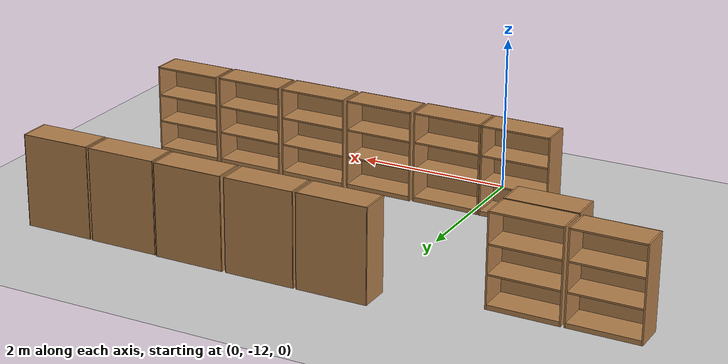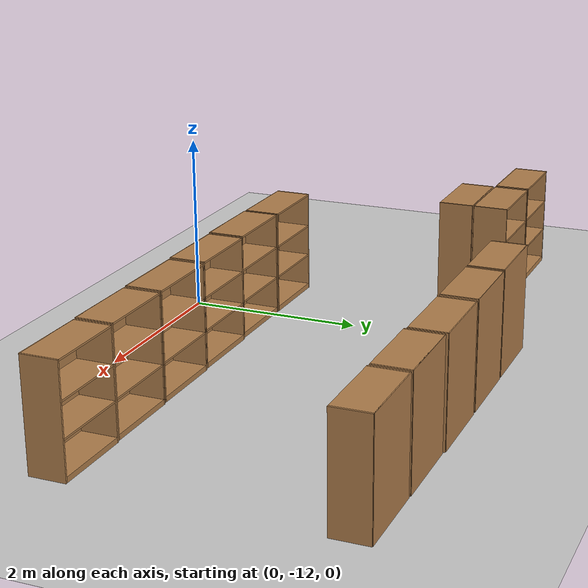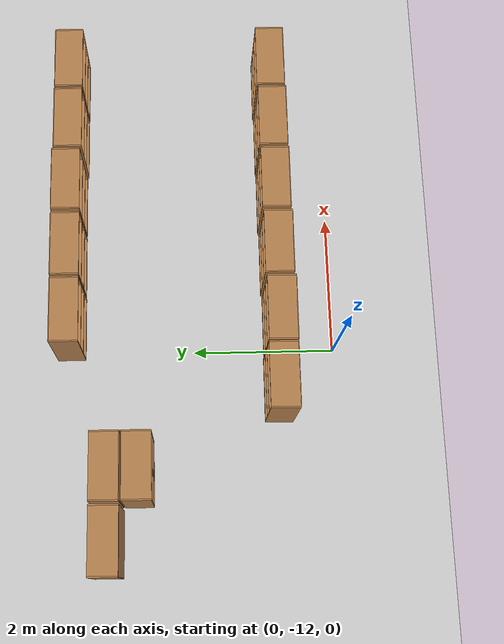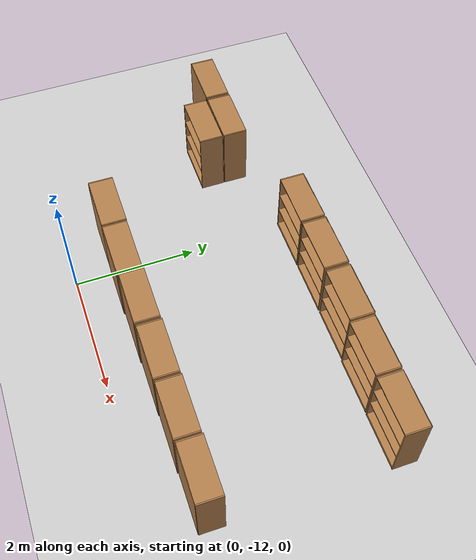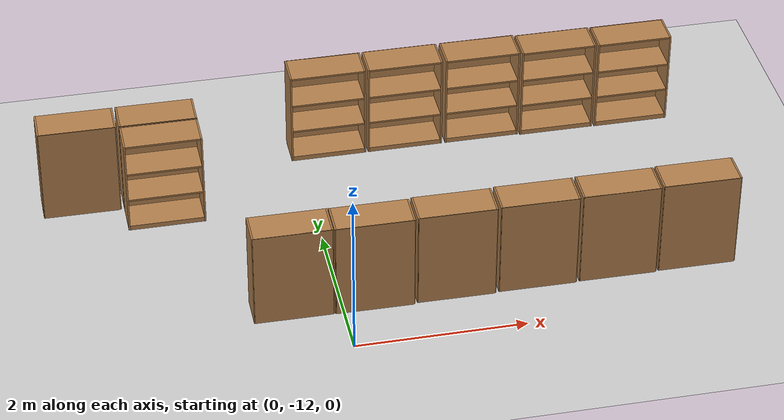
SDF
<sdf version="1.6">
 <world name="default">
  <model name="ground_plane">
   <static>1</static>
   <link name="link">
    <collision name="collision">
     <geometry><plane><normal>0 0 1</normal><size>100 100</size></plane></geometry>
     <surface>
      <contact><collide_bitmask>65535</collide_bitmask></contact>
      <friction><ode><mu>100</mu><mu2>50</mu2></ode></friction>
     </surface>
    </collision>
    <visual name="visual">
     <cast_shadows>0</cast_shadows>
     <geometry><plane><normal>0 0 1</normal><size>100 100</size></plane></geometry>
     <material>
      <script><uri>file://media/materials/scripts/gazebo.material</uri><name>Gazebo/Grey</name></script>
     </material>
    </visual>
   </link>
  </model>
  <model name="bookshelf_clone_56">
   <static>1</static>
   <link name="link">
    <inertial><mass>1</mass></inertial>
    <collision name="back">
     <pose>0 0.005 0.6 0 -0 0</pose>
     <geometry><box><size>0.9 0.01 1.2</size></box></geometry>
    </collision>
    <visual name="visual1">
     <pose>0 0.005 0.6 0 -0 0</pose>
     <geometry><box><size>0.9 0.01 1.2</size></box></geometry>
     <material>
      <script><uri>file://media/materials/scripts/gazebo.material</uri><name>Gazebo/Wood</name></script>
     </material>
    </visual>
    <collision name="left_side">
     <pose>0.45 -0.195 0.6 0 -0 0</pose>
     <geometry><box><size>0.02 0.4 1.2</size></box></geometry>
    </collision>
    <visual name="visual2">
     <pose>0.45 -0.195 0.6 0 -0 0</pose>
     <geometry><box><size>0.02 0.4 1.2</size></box></geometry>
     <material>
      <script><uri>file://media/materials/scripts/gazebo.material</uri><name>Gazebo/Wood</name></script>
     </material>
    </visual>
    <collision name="right_side">
     <pose>-0.45 -0.195 0.6 0 -0 0</pose>
     <geometry><box><size>0.02 0.4 1.2</size></box></geometry>
    </collision>
    <visual name="visual3">
     <pose>-0.45 -0.195 0.6 0 -0 0</pose>
     <geometry><box><size>0.02 0.4 1.2</size></box></geometry>
     <material>
      <script><uri>file://media/materials/scripts/gazebo.material</uri><name>Gazebo/Wood</name></script>
     </material>
    </visual>
    <collision name="bottom">
     <pose>0 -0.195 0.03 0 -0 0</pose>
     <geometry><box><size>0.88 0.4 0.06</size></box></geometry>
    </collision>
    <visual name="visual4">
     <pose>0 -0.195 0.03 0 -0 0</pose>
     <geometry><box><size>0.88 0.4 0.06</size></box></geometry>
     <material>
      <script><uri>file://media/materials/scripts/gazebo.material</uri><name>Gazebo/Wood</name></script>
     </material>
    </visual>
    <collision name="top">
     <pose>0 -0.195 1.19 0 -0 0</pose>
     <geometry><box><size>0.88 0.4 0.02</size></box></geometry>
    </collision>
    <visual name="visual5">
     <pose>0 -0.195 1.19 0 -0 0</pose>
     <geometry><box><size>0.88 0.4 0.02</size></box></geometry>
     <material>
      <script><uri>file://media/materials/scripts/gazebo.material</uri><name>Gazebo/Wood</name></script>
     </material>
    </visual>
    <collision name="low_shelf">
     <pose>0 -0.195 0.43 0 -0 0</pose>
     <geometry><box><size>0.88 0.4 0.02</size></box></geometry>
    </collision>
    <visual name="visual6">
     <pose>0 -0.195 0.43 0 -0 0</pose>
     <geometry><box><size>0.88 0.4 0.02</size></box></geometry>
     <material>
      <script><uri>file://media/materials/scripts/gazebo.material</uri><name>Gazebo/Wood</name></script>
     </material>
    </visual>
    <collision name="high_shelf">
     <pose>0 -0.195 0.8 0 -0 0</pose>
     <geometry><box><size>0.88 0.4 0.02</size></box></geometry>
    </collision>
    <visual name="visual7">
     <pose>0 -0.195 0.8 0 -0 0</pose>
     <geometry><box><size>0.88 0.4 0.02</size></box></geometry>
     <material>
      <script><uri>file://media/materials/scripts/gazebo.material</uri><name>Gazebo/Wood</name></script>
     </material>
    </visual>
   </link>
   <pose>-0.569408 -11.3883 0 0 -0 3.13561</pose>
  </model>
  <model name="bookshelf_clone_57">
   <static>1</static>
   <link name="link">
    <inertial><mass>1</mass></inertial>
    <collision name="back">
     <pose>0 0.005 0.6 0 -0 0</pose>
     <geometry><box><size>0.9 0.01 1.2</size></box></geometry>
    </collision>
    <visual name="visual1">
     <pose>0 0.005 0.6 0 -0 0</pose>
     <geometry><box><size>0.9 0.01 1.2</size></box></geometry>
     <material>
      <script><uri>file://media/materials/scripts/gazebo.material</uri><name>Gazebo/Wood</name></script>
     </material>
    </visual>
    <collision name="left_side">
     <pose>0.45 -0.195 0.6 0 -0 0</pose>
     <geometry><box><size>0.02 0.4 1.2</size></box></geometry>
    </collision>
    <visual name="visual2">
     <pose>0.45 -0.195 0.6 0 -0 0</pose>
     <geometry><box><size>0.02 0.4 1.2</size></box></geometry>
     <material>
      <script><uri>file://media/materials/scripts/gazebo.material</uri><name>Gazebo/Wood</name></script>
     </material>
    </visual>
    <collision name="right_side">
     <pose>-0.45 -0.195 0.6 0 -0 0</pose>
     <geometry><box><size>0.02 0.4 1.2</size></box></geometry>
    </collision>
    <visual name="visual3">
     <pose>-0.45 -0.195 0.6 0 -0 0</pose>
     <geometry><box><size>0.02 0.4 1.2</size></box></geometry>
     <material>
      <script><uri>file://media/materials/scripts/gazebo.material</uri><name>Gazebo/Wood</name></script>
     </material>
    </visual>
    <collision name="bottom">
     <pose>0 -0.195 0.03 0 -0 0</pose>
     <geometry><box><size>0.88 0.4 0.06</size></box></geometry>
    </collision>
    <visual name="visual4">
     <pose>0 -0.195 0.03 0 -0 0</pose>
     <geometry><box><size>0.88 0.4 0.06</size></box></geometry>
     <material>
      <script><uri>file://media/materials/scripts/gazebo.material</uri><name>Gazebo/Wood</name></script>
     </material>
    </visual>
    <collision name="top">
     <pose>0 -0.195 1.19 0 -0 0</pose>
     <geometry><box><size>0.88 0.4 0.02</size></box></geometry>
    </collision>
    <visual name="visual5">
     <pose>0 -0.195 1.19 0 -0 0</pose>
     <geometry><box><size>0.88 0.4 0.02</size></box></geometry>
     <material>
      <script><uri>file://media/materials/scripts/gazebo.material</uri><name>Gazebo/Wood</name></script>
     </material>
    </visual>
    <collision name="low_shelf">
     <pose>0 -0.195 0.43 0 -0 0</pose>
     <geometry><box><size>0.88 0.4 0.02</size></box></geometry>
    </collision>
    <visual name="visual6">
     <pose>0 -0.195 0.43 0 -0 0</pose>
     <geometry><box><size>0.88 0.4 0.02</size></box></geometry>
     <material>
      <script><uri>file://media/materials/scripts/gazebo.material</uri><name>Gazebo/Wood</name></script>
     </material>
    </visual>
    <collision name="high_shelf">
     <pose>0 -0.195 0.8 0 -0 0</pose>
     <geometry><box><size>0.88 0.4 0.02</size></box></geometry>
    </collision>
    <visual name="visual7">
     <pose>0 -0.195 0.8 0 -0 0</pose>
     <geometry><box><size>0.88 0.4 0.02</size></box></geometry>
     <material>
      <script><uri>file://media/materials/scripts/gazebo.material</uri><name>Gazebo/Wood</name></script>
     </material>
    </visual>
   </link>
   <pose>0.361588 -11.3985 0 0 -0 3.13561</pose>
  </model>
  <model name="bookshelf_clone_58">
   <static>1</static>
   <link name="link">
    <inertial><mass>1</mass></inertial>
    <collision name="back">
     <pose>0 0.005 0.6 0 -0 0</pose>
     <geometry><box><size>0.9 0.01 1.2</size></box></geometry>
    </collision>
    <visual name="visual1">
     <pose>0 0.005 0.6 0 -0 0</pose>
     <geometry><box><size>0.9 0.01 1.2</size></box></geometry>
     <material>
      <script><uri>file://media/materials/scripts/gazebo.material</uri><name>Gazebo/Wood</name></script>
     </material>
    </visual>
    <collision name="left_side">
     <pose>0.45 -0.195 0.6 0 -0 0</pose>
     <geometry><box><size>0.02 0.4 1.2</size></box></geometry>
    </collision>
    <visual name="visual2">
     <pose>0.45 -0.195 0.6 0 -0 0</pose>
     <geometry><box><size>0.02 0.4 1.2</size></box></geometry>
     <material>
      <script><uri>file://media/materials/scripts/gazebo.material</uri><name>Gazebo/Wood</name></script>
     </material>
    </visual>
    <collision name="right_side">
     <pose>-0.45 -0.195 0.6 0 -0 0</pose>
     <geometry><box><size>0.02 0.4 1.2</size></box></geometry>
    </collision>
    <visual name="visual3">
     <pose>-0.45 -0.195 0.6 0 -0 0</pose>
     <geometry><box><size>0.02 0.4 1.2</size></box></geometry>
     <material>
      <script><uri>file://media/materials/scripts/gazebo.material</uri><name>Gazebo/Wood</name></script>
     </material>
    </visual>
    <collision name="bottom">
     <pose>0 -0.195 0.03 0 -0 0</pose>
     <geometry><box><size>0.88 0.4 0.06</size></box></geometry>
    </collision>
    <visual name="visual4">
     <pose>0 -0.195 0.03 0 -0 0</pose>
     <geometry><box><size>0.88 0.4 0.06</size></box></geometry>
     <material>
      <script><uri>file://media/materials/scripts/gazebo.material</uri><name>Gazebo/Wood</name></script>
     </material>
    </visual>
    <collision name="top">
     <pose>0 -0.195 1.19 0 -0 0</pose>
     <geometry><box><size>0.88 0.4 0.02</size></box></geometry>
    </collision>
    <visual name="visual5">
     <pose>0 -0.195 1.19 0 -0 0</pose>
     <geometry><box><size>0.88 0.4 0.02</size></box></geometry>
     <material>
      <script><uri>file://media/materials/scripts/gazebo.material</uri><name>Gazebo/Wood</name></script>
     </material>
    </visual>
    <collision name="low_shelf">
     <pose>0 -0.195 0.43 0 -0 0</pose>
     <geometry><box><size>0.88 0.4 0.02</size></box></geometry>
    </collision>
    <visual name="visual6">
     <pose>0 -0.195 0.43 0 -0 0</pose>
     <geometry><box><size>0.88 0.4 0.02</size></box></geometry>
     <material>
      <script><uri>file://media/materials/scripts/gazebo.material</uri><name>Gazebo/Wood</name></script>
     </material>
    </visual>
    <collision name="high_shelf">
     <pose>0 -0.195 0.8 0 -0 0</pose>
     <geometry><box><size>0.88 0.4 0.02</size></box></geometry>
    </collision>
    <visual name="visual7">
     <pose>0 -0.195 0.8 0 -0 0</pose>
     <geometry><box><size>0.88 0.4 0.02</size></box></geometry>
     <material>
      <script><uri>file://media/materials/scripts/gazebo.material</uri><name>Gazebo/Wood</name></script>
     </material>
    </visual>
   </link>
   <pose>1.30898 -11.3858 0 0 -0 3.13561</pose>
  </model>
  <model name="bookshelf_clone_59">
   <static>1</static>
   <link name="link">
    <inertial><mass>1</mass></inertial>
    <collision name="back">
     <pose>0 0.005 0.6 0 -0 0</pose>
     <geometry><box><size>0.9 0.01 1.2</size></box></geometry>
    </collision>
    <visual name="visual1">
     <pose>0 0.005 0.6 0 -0 0</pose>
     <geometry><box><size>0.9 0.01 1.2</size></box></geometry>
     <material>
      <script><uri>file://media/materials/scripts/gazebo.material</uri><name>Gazebo/Wood</name></script>
     </material>
    </visual>
    <collision name="left_side">
     <pose>0.45 -0.195 0.6 0 -0 0</pose>
     <geometry><box><size>0.02 0.4 1.2</size></box></geometry>
    </collision>
    <visual name="visual2">
     <pose>0.45 -0.195 0.6 0 -0 0</pose>
     <geometry><box><size>0.02 0.4 1.2</size></box></geometry>
     <material>
      <script><uri>file://media/materials/scripts/gazebo.material</uri><name>Gazebo/Wood</name></script>
     </material>
    </visual>
    <collision name="right_side">
     <pose>-0.45 -0.195 0.6 0 -0 0</pose>
     <geometry><box><size>0.02 0.4 1.2</size></box></geometry>
    </collision>
    <visual name="visual3">
     <pose>-0.45 -0.195 0.6 0 -0 0</pose>
     <geometry><box><size>0.02 0.4 1.2</size></box></geometry>
     <material>
      <script><uri>file://media/materials/scripts/gazebo.material</uri><name>Gazebo/Wood</name></script>
     </material>
    </visual>
    <collision name="bottom">
     <pose>0 -0.195 0.03 0 -0 0</pose>
     <geometry><box><size>0.88 0.4 0.06</size></box></geometry>
    </collision>
    <visual name="visual4">
     <pose>0 -0.195 0.03 0 -0 0</pose>
     <geometry><box><size>0.88 0.4 0.06</size></box></geometry>
     <material>
      <script><uri>file://media/materials/scripts/gazebo.material</uri><name>Gazebo/Wood</name></script>
     </material>
    </visual>
    <collision name="top">
     <pose>0 -0.195 1.19 0 -0 0</pose>
     <geometry><box><size>0.88 0.4 0.02</size></box></geometry>
    </collision>
    <visual name="visual5">
     <pose>0 -0.195 1.19 0 -0 0</pose>
     <geometry><box><size>0.88 0.4 0.02</size></box></geometry>
     <material>
      <script><uri>file://media/materials/scripts/gazebo.material</uri><name>Gazebo/Wood</name></script>
     </material>
    </visual>
    <collision name="low_shelf">
     <pose>0 -0.195 0.43 0 -0 0</pose>
     <geometry><box><size>0.88 0.4 0.02</size></box></geometry>
    </collision>
    <visual name="visual6">
     <pose>0 -0.195 0.43 0 -0 0</pose>
     <geometry><box><size>0.88 0.4 0.02</size></box></geometry>
     <material>
      <script><uri>file://media/materials/scripts/gazebo.material</uri><name>Gazebo/Wood</name></script>
     </material>
    </visual>
    <collision name="high_shelf">
     <pose>0 -0.195 0.8 0 -0 0</pose>
     <geometry><box><size>0.88 0.4 0.02</size></box></geometry>
    </collision>
    <visual name="visual7">
     <pose>0 -0.195 0.8 0 -0 0</pose>
     <geometry><box><size>0.88 0.4 0.02</size></box></geometry>
     <material>
      <script><uri>file://media/materials/scripts/gazebo.material</uri><name>Gazebo/Wood</name></script>
     </material>
    </visual>
   </link>
   <pose>2.26189 -11.3761 0 0 -0 3.13561</pose>
  </model>
  <model name="bookshelf_clone_60">
   <static>1</static>
   <link name="link">
    <inertial><mass>1</mass></inertial>
    <collision name="back">
     <pose>0 0.005 0.6 0 -0 0</pose>
     <geometry><box><size>0.9 0.01 1.2</size></box></geometry>
    </collision>
    <visual name="visual1">
     <pose>0 0.005 0.6 0 -0 0</pose>
     <geometry><box><size>0.9 0.01 1.2</size></box></geometry>
     <material>
      <script><uri>file://media/materials/scripts/gazebo.material</uri><name>Gazebo/Wood</name></script>
     </material>
    </visual>
    <collision name="left_side">
     <pose>0.45 -0.195 0.6 0 -0 0</pose>
     <geometry><box><size>0.02 0.4 1.2</size></box></geometry>
    </collision>
    <visual name="visual2">
     <pose>0.45 -0.195 0.6 0 -0 0</pose>
     <geometry><box><size>0.02 0.4 1.2</size></box></geometry>
     <material>
      <script><uri>file://media/materials/scripts/gazebo.material</uri><name>Gazebo/Wood</name></script>
     </material>
    </visual>
    <collision name="right_side">
     <pose>-0.45 -0.195 0.6 0 -0 0</pose>
     <geometry><box><size>0.02 0.4 1.2</size></box></geometry>
    </collision>
    <visual name="visual3">
     <pose>-0.45 -0.195 0.6 0 -0 0</pose>
     <geometry><box><size>0.02 0.4 1.2</size></box></geometry>
     <material>
      <script><uri>file://media/materials/scripts/gazebo.material</uri><name>Gazebo/Wood</name></script>
     </material>
    </visual>
    <collision name="bottom">
     <pose>0 -0.195 0.03 0 -0 0</pose>
     <geometry><box><size>0.88 0.4 0.06</size></box></geometry>
    </collision>
    <visual name="visual4">
     <pose>0 -0.195 0.03 0 -0 0</pose>
     <geometry><box><size>0.88 0.4 0.06</size></box></geometry>
     <material>
      <script><uri>file://media/materials/scripts/gazebo.material</uri><name>Gazebo/Wood</name></script>
     </material>
    </visual>
    <collision name="top">
     <pose>0 -0.195 1.19 0 -0 0</pose>
     <geometry><box><size>0.88 0.4 0.02</size></box></geometry>
    </collision>
    <visual name="visual5">
     <pose>0 -0.195 1.19 0 -0 0</pose>
     <geometry><box><size>0.88 0.4 0.02</size></box></geometry>
     <material>
      <script><uri>file://media/materials/scripts/gazebo.material</uri><name>Gazebo/Wood</name></script>
     </material>
    </visual>
    <collision name="low_shelf">
     <pose>0 -0.195 0.43 0 -0 0</pose>
     <geometry><box><size>0.88 0.4 0.02</size></box></geometry>
    </collision>
    <visual name="visual6">
     <pose>0 -0.195 0.43 0 -0 0</pose>
     <geometry><box><size>0.88 0.4 0.02</size></box></geometry>
     <material>
      <script><uri>file://media/materials/scripts/gazebo.material</uri><name>Gazebo/Wood</name></script>
     </material>
    </visual>
    <collision name="high_shelf">
     <pose>0 -0.195 0.8 0 -0 0</pose>
     <geometry><box><size>0.88 0.4 0.02</size></box></geometry>
    </collision>
    <visual name="visual7">
     <pose>0 -0.195 0.8 0 -0 0</pose>
     <geometry><box><size>0.88 0.4 0.02</size></box></geometry>
     <material>
      <script><uri>file://media/materials/scripts/gazebo.material</uri><name>Gazebo/Wood</name></script>
     </material>
    </visual>
   </link>
   <pose>3.21199 -11.3706 0 0 -0 3.13561</pose>
  </model>
  <model name="bookshelf_clone_61">
   <static>1</static>
   <link name="link">
    <inertial><mass>1</mass></inertial>
    <collision name="back">
     <pose>0 0.005 0.6 0 -0 0</pose>
     <geometry><box><size>0.9 0.01 1.2</size></box></geometry>
    </collision>
    <visual name="visual1">
     <pose>0 0.005 0.6 0 -0 0</pose>
     <geometry><box><size>0.9 0.01 1.2</size></box></geometry>
     <material>
      <script><uri>file://media/materials/scripts/gazebo.material</uri><name>Gazebo/Wood</name></script>
     </material>
    </visual>
    <collision name="left_side">
     <pose>0.45 -0.195 0.6 0 -0 0</pose>
     <geometry><box><size>0.02 0.4 1.2</size></box></geometry>
    </collision>
    <visual name="visual2">
     <pose>0.45 -0.195 0.6 0 -0 0</pose>
     <geometry><box><size>0.02 0.4 1.2</size></box></geometry>
     <material>
      <script><uri>file://media/materials/scripts/gazebo.material</uri><name>Gazebo/Wood</name></script>
     </material>
    </visual>
    <collision name="right_side">
     <pose>-0.45 -0.195 0.6 0 -0 0</pose>
     <geometry><box><size>0.02 0.4 1.2</size></box></geometry>
    </collision>
    <visual name="visual3">
     <pose>-0.45 -0.195 0.6 0 -0 0</pose>
     <geometry><box><size>0.02 0.4 1.2</size></box></geometry>
     <material>
      <script><uri>file://media/materials/scripts/gazebo.material</uri><name>Gazebo/Wood</name></script>
     </material>
    </visual>
    <collision name="bottom">
     <pose>0 -0.195 0.03 0 -0 0</pose>
     <geometry><box><size>0.88 0.4 0.06</size></box></geometry>
    </collision>
    <visual name="visual4">
     <pose>0 -0.195 0.03 0 -0 0</pose>
     <geometry><box><size>0.88 0.4 0.06</size></box></geometry>
     <material>
      <script><uri>file://media/materials/scripts/gazebo.material</uri><name>Gazebo/Wood</name></script>
     </material>
    </visual>
    <collision name="top">
     <pose>0 -0.195 1.19 0 -0 0</pose>
     <geometry><box><size>0.88 0.4 0.02</size></box></geometry>
    </collision>
    <visual name="visual5">
     <pose>0 -0.195 1.19 0 -0 0</pose>
     <geometry><box><size>0.88 0.4 0.02</size></box></geometry>
     <material>
      <script><uri>file://media/materials/scripts/gazebo.material</uri><name>Gazebo/Wood</name></script>
     </material>
    </visual>
    <collision name="low_shelf">
     <pose>0 -0.195 0.43 0 -0 0</pose>
     <geometry><box><size>0.88 0.4 0.02</size></box></geometry>
    </collision>
    <visual name="visual6">
     <pose>0 -0.195 0.43 0 -0 0</pose>
     <geometry><box><size>0.88 0.4 0.02</size></box></geometry>
     <material>
      <script><uri>file://media/materials/scripts/gazebo.material</uri><name>Gazebo/Wood</name></script>
     </material>
    </visual>
    <collision name="high_shelf">
     <pose>0 -0.195 0.8 0 -0 0</pose>
     <geometry><box><size>0.88 0.4 0.02</size></box></geometry>
    </collision>
    <visual name="visual7">
     <pose>0 -0.195 0.8 0 -0 0</pose>
     <geometry><box><size>0.88 0.4 0.02</size></box></geometry>
     <material>
      <script><uri>file://media/materials/scripts/gazebo.material</uri><name>Gazebo/Wood</name></script>
     </material>
    </visual>
   </link>
   <pose>4.15472 -11.3616 0 0 -0 3.13561</pose>
  </model>
  <model name="bookshelf_clone_62">
   <static>1</static>
   <link name="link">
    <inertial><mass>1</mass></inertial>
    <collision name="back">
     <pose>0 0.005 0.6 0 -0 0</pose>
     <geometry><box><size>0.9 0.01 1.2</size></box></geometry>
    </collision>
    <visual name="visual1">
     <pose>0 0.005 0.6 0 -0 0</pose>
     <geometry><box><size>0.9 0.01 1.2</size></box></geometry>
     <material>
      <script><uri>file://media/materials/scripts/gazebo.material</uri><name>Gazebo/Wood</name></script>
     </material>
    </visual>
    <collision name="left_side">
     <pose>0.45 -0.195 0.6 0 -0 0</pose>
     <geometry><box><size>0.02 0.4 1.2</size></box></geometry>
    </collision>
    <visual name="visual2">
     <pose>0.45 -0.195 0.6 0 -0 0</pose>
     <geometry><box><size>0.02 0.4 1.2</size></box></geometry>
     <material>
      <script><uri>file://media/materials/scripts/gazebo.material</uri><name>Gazebo/Wood</name></script>
     </material>
    </visual>
    <collision name="right_side">
     <pose>-0.45 -0.195 0.6 0 -0 0</pose>
     <geometry><box><size>0.02 0.4 1.2</size></box></geometry>
    </collision>
    <visual name="visual3">
     <pose>-0.45 -0.195 0.6 0 -0 0</pose>
     <geometry><box><size>0.02 0.4 1.2</size></box></geometry>
     <material>
      <script><uri>file://media/materials/scripts/gazebo.material</uri><name>Gazebo/Wood</name></script>
     </material>
    </visual>
    <collision name="bottom">
     <pose>0 -0.195 0.03 0 -0 0</pose>
     <geometry><box><size>0.88 0.4 0.06</size></box></geometry>
    </collision>
    <visual name="visual4">
     <pose>0 -0.195 0.03 0 -0 0</pose>
     <geometry><box><size>0.88 0.4 0.06</size></box></geometry>
     <material>
      <script><uri>file://media/materials/scripts/gazebo.material</uri><name>Gazebo/Wood</name></script>
     </material>
    </visual>
    <collision name="top">
     <pose>0 -0.195 1.19 0 -0 0</pose>
     <geometry><box><size>0.88 0.4 0.02</size></box></geometry>
    </collision>
    <visual name="visual5">
     <pose>0 -0.195 1.19 0 -0 0</pose>
     <geometry><box><size>0.88 0.4 0.02</size></box></geometry>
     <material>
      <script><uri>file://media/materials/scripts/gazebo.material</uri><name>Gazebo/Wood</name></script>
     </material>
    </visual>
    <collision name="low_shelf">
     <pose>0 -0.195 0.43 0 -0 0</pose>
     <geometry><box><size>0.88 0.4 0.02</size></box></geometry>
    </collision>
    <visual name="visual6">
     <pose>0 -0.195 0.43 0 -0 0</pose>
     <geometry><box><size>0.88 0.4 0.02</size></box></geometry>
     <material>
      <script><uri>file://media/materials/scripts/gazebo.material</uri><name>Gazebo/Wood</name></script>
     </material>
    </visual>
    <collision name="high_shelf">
     <pose>0 -0.195 0.8 0 -0 0</pose>
     <geometry><box><size>0.88 0.4 0.02</size></box></geometry>
    </collision>
    <visual name="visual7">
     <pose>0 -0.195 0.8 0 -0 0</pose>
     <geometry><box><size>0.88 0.4 0.02</size></box></geometry>
     <material>
      <script><uri>file://media/materials/scripts/gazebo.material</uri><name>Gazebo/Wood</name></script>
     </material>
    </visual>
   </link>
   <pose>4.17321 -8.04699 0 0 -0 0.00089</pose>
  </model>
  <model name="bookshelf_clone_63">
   <static>1</static>
   <link name="link">
    <inertial><mass>1</mass></inertial>
    <collision name="back">
     <pose>0 0.005 0.6 0 -0 0</pose>
     <geometry><box><size>0.9 0.01 1.2</size></box></geometry>
    </collision>
    <visual name="visual1">
     <pose>0 0.005 0.6 0 -0 0</pose>
     <geometry><box><size>0.9 0.01 1.2</size></box></geometry>
     <material>
      <script><uri>file://media/materials/scripts/gazebo.material</uri><name>Gazebo/Wood</name></script>
     </material>
    </visual>
    <collision name="left_side">
     <pose>0.45 -0.195 0.6 0 -0 0</pose>
     <geometry><box><size>0.02 0.4 1.2</size></box></geometry>
    </collision>
    <visual name="visual2">
     <pose>0.45 -0.195 0.6 0 -0 0</pose>
     <geometry><box><size>0.02 0.4 1.2</size></box></geometry>
     <material>
      <script><uri>file://media/materials/scripts/gazebo.material</uri><name>Gazebo/Wood</name></script>
     </material>
    </visual>
    <collision name="right_side">
     <pose>-0.45 -0.195 0.6 0 -0 0</pose>
     <geometry><box><size>0.02 0.4 1.2</size></box></geometry>
    </collision>
    <visual name="visual3">
     <pose>-0.45 -0.195 0.6 0 -0 0</pose>
     <geometry><box><size>0.02 0.4 1.2</size></box></geometry>
     <material>
      <script><uri>file://media/materials/scripts/gazebo.material</uri><name>Gazebo/Wood</name></script>
     </material>
    </visual>
    <collision name="bottom">
     <pose>0 -0.195 0.03 0 -0 0</pose>
     <geometry><box><size>0.88 0.4 0.06</size></box></geometry>
    </collision>
    <visual name="visual4">
     <pose>0 -0.195 0.03 0 -0 0</pose>
     <geometry><box><size>0.88 0.4 0.06</size></box></geometry>
     <material>
      <script><uri>file://media/materials/scripts/gazebo.material</uri><name>Gazebo/Wood</name></script>
     </material>
    </visual>
    <collision name="top">
     <pose>0 -0.195 1.19 0 -0 0</pose>
     <geometry><box><size>0.88 0.4 0.02</size></box></geometry>
    </collision>
    <visual name="visual5">
     <pose>0 -0.195 1.19 0 -0 0</pose>
     <geometry><box><size>0.88 0.4 0.02</size></box></geometry>
     <material>
      <script><uri>file://media/materials/scripts/gazebo.material</uri><name>Gazebo/Wood</name></script>
     </material>
    </visual>
    <collision name="low_shelf">
     <pose>0 -0.195 0.43 0 -0 0</pose>
     <geometry><box><size>0.88 0.4 0.02</size></box></geometry>
    </collision>
    <visual name="visual6">
     <pose>0 -0.195 0.43 0 -0 0</pose>
     <geometry><box><size>0.88 0.4 0.02</size></box></geometry>
     <material>
      <script><uri>file://media/materials/scripts/gazebo.material</uri><name>Gazebo/Wood</name></script>
     </material>
    </visual>
    <collision name="high_shelf">
     <pose>0 -0.195 0.8 0 -0 0</pose>
     <geometry><box><size>0.88 0.4 0.02</size></box></geometry>
    </collision>
    <visual name="visual7">
     <pose>0 -0.195 0.8 0 -0 0</pose>
     <geometry><box><size>0.88 0.4 0.02</size></box></geometry>
     <material>
      <script><uri>file://media/materials/scripts/gazebo.material</uri><name>Gazebo/Wood</name></script>
     </material>
    </visual>
   </link>
   <pose>3.22796 -8.04217 0 0 -0 0.00089</pose>
  </model>
  <model name="bookshelf_clone_64">
   <static>1</static>
   <link name="link">
    <inertial><mass>1</mass></inertial>
    <collision name="back">
     <pose>0 0.005 0.6 0 -0 0</pose>
     <geometry><box><size>0.9 0.01 1.2</size></box></geometry>
    </collision>
    <visual name="visual1">
     <pose>0 0.005 0.6 0 -0 0</pose>
     <geometry><box><size>0.9 0.01 1.2</size></box></geometry>
     <material>
      <script><uri>file://media/materials/scripts/gazebo.material</uri><name>Gazebo/Wood</name></script>
     </material>
    </visual>
    <collision name="left_side">
     <pose>0.45 -0.195 0.6 0 -0 0</pose>
     <geometry><box><size>0.02 0.4 1.2</size></box></geometry>
    </collision>
    <visual name="visual2">
     <pose>0.45 -0.195 0.6 0 -0 0</pose>
     <geometry><box><size>0.02 0.4 1.2</size></box></geometry>
     <material>
      <script><uri>file://media/materials/scripts/gazebo.material</uri><name>Gazebo/Wood</name></script>
     </material>
    </visual>
    <collision name="right_side">
     <pose>-0.45 -0.195 0.6 0 -0 0</pose>
     <geometry><box><size>0.02 0.4 1.2</size></box></geometry>
    </collision>
    <visual name="visual3">
     <pose>-0.45 -0.195 0.6 0 -0 0</pose>
     <geometry><box><size>0.02 0.4 1.2</size></box></geometry>
     <material>
      <script><uri>file://media/materials/scripts/gazebo.material</uri><name>Gazebo/Wood</name></script>
     </material>
    </visual>
    <collision name="bottom">
     <pose>0 -0.195 0.03 0 -0 0</pose>
     <geometry><box><size>0.88 0.4 0.06</size></box></geometry>
    </collision>
    <visual name="visual4">
     <pose>0 -0.195 0.03 0 -0 0</pose>
     <geometry><box><size>0.88 0.4 0.06</size></box></geometry>
     <material>
      <script><uri>file://media/materials/scripts/gazebo.material</uri><name>Gazebo/Wood</name></script>
     </material>
    </visual>
    <collision name="top">
     <pose>0 -0.195 1.19 0 -0 0</pose>
     <geometry><box><size>0.88 0.4 0.02</size></box></geometry>
    </collision>
    <visual name="visual5">
     <pose>0 -0.195 1.19 0 -0 0</pose>
     <geometry><box><size>0.88 0.4 0.02</size></box></geometry>
     <material>
      <script><uri>file://media/materials/scripts/gazebo.material</uri><name>Gazebo/Wood</name></script>
     </material>
    </visual>
    <collision name="low_shelf">
     <pose>0 -0.195 0.43 0 -0 0</pose>
     <geometry><box><size>0.88 0.4 0.02</size></box></geometry>
    </collision>
    <visual name="visual6">
     <pose>0 -0.195 0.43 0 -0 0</pose>
     <geometry><box><size>0.88 0.4 0.02</size></box></geometry>
     <material>
      <script><uri>file://media/materials/scripts/gazebo.material</uri><name>Gazebo/Wood</name></script>
     </material>
    </visual>
    <collision name="high_shelf">
     <pose>0 -0.195 0.8 0 -0 0</pose>
     <geometry><box><size>0.88 0.4 0.02</size></box></geometry>
    </collision>
    <visual name="visual7">
     <pose>0 -0.195 0.8 0 -0 0</pose>
     <geometry><box><size>0.88 0.4 0.02</size></box></geometry>
     <material>
      <script><uri>file://media/materials/scripts/gazebo.material</uri><name>Gazebo/Wood</name></script>
     </material>
    </visual>
   </link>
   <pose>2.28585 -8.02397 0 0 -0 0.00089</pose>
  </model>
  <model name="bookshelf_clone_65">
   <static>1</static>
   <link name="link">
    <inertial><mass>1</mass></inertial>
    <collision name="back">
     <pose>0 0.005 0.6 0 -0 0</pose>
     <geometry><box><size>0.9 0.01 1.2</size></box></geometry>
    </collision>
    <visual name="visual1">
     <pose>0 0.005 0.6 0 -0 0</pose>
     <geometry><box><size>0.9 0.01 1.2</size></box></geometry>
     <material>
      <script><uri>file://media/materials/scripts/gazebo.material</uri><name>Gazebo/Wood</name></script>
     </material>
    </visual>
    <collision name="left_side">
     <pose>0.45 -0.195 0.6 0 -0 0</pose>
     <geometry><box><size>0.02 0.4 1.2</size></box></geometry>
    </collision>
    <visual name="visual2">
     <pose>0.45 -0.195 0.6 0 -0 0</pose>
     <geometry><box><size>0.02 0.4 1.2</size></box></geometry>
     <material>
      <script><uri>file://media/materials/scripts/gazebo.material</uri><name>Gazebo/Wood</name></script>
     </material>
    </visual>
    <collision name="right_side">
     <pose>-0.45 -0.195 0.6 0 -0 0</pose>
     <geometry><box><size>0.02 0.4 1.2</size></box></geometry>
    </collision>
    <visual name="visual3">
     <pose>-0.45 -0.195 0.6 0 -0 0</pose>
     <geometry><box><size>0.02 0.4 1.2</size></box></geometry>
     <material>
      <script><uri>file://media/materials/scripts/gazebo.material</uri><name>Gazebo/Wood</name></script>
     </material>
    </visual>
    <collision name="bottom">
     <pose>0 -0.195 0.03 0 -0 0</pose>
     <geometry><box><size>0.88 0.4 0.06</size></box></geometry>
    </collision>
    <visual name="visual4">
     <pose>0 -0.195 0.03 0 -0 0</pose>
     <geometry><box><size>0.88 0.4 0.06</size></box></geometry>
     <material>
      <script><uri>file://media/materials/scripts/gazebo.material</uri><name>Gazebo/Wood</name></script>
     </material>
    </visual>
    <collision name="top">
     <pose>0 -0.195 1.19 0 -0 0</pose>
     <geometry><box><size>0.88 0.4 0.02</size></box></geometry>
    </collision>
    <visual name="visual5">
     <pose>0 -0.195 1.19 0 -0 0</pose>
     <geometry><box><size>0.88 0.4 0.02</size></box></geometry>
     <material>
      <script><uri>file://media/materials/scripts/gazebo.material</uri><name>Gazebo/Wood</name></script>
     </material>
    </visual>
    <collision name="low_shelf">
     <pose>0 -0.195 0.43 0 -0 0</pose>
     <geometry><box><size>0.88 0.4 0.02</size></box></geometry>
    </collision>
    <visual name="visual6">
     <pose>0 -0.195 0.43 0 -0 0</pose>
     <geometry><box><size>0.88 0.4 0.02</size></box></geometry>
     <material>
      <script><uri>file://media/materials/scripts/gazebo.material</uri><name>Gazebo/Wood</name></script>
     </material>
    </visual>
    <collision name="high_shelf">
     <pose>0 -0.195 0.8 0 -0 0</pose>
     <geometry><box><size>0.88 0.4 0.02</size></box></geometry>
    </collision>
    <visual name="visual7">
     <pose>0 -0.195 0.8 0 -0 0</pose>
     <geometry><box><size>0.88 0.4 0.02</size></box></geometry>
     <material>
      <script><uri>file://media/materials/scripts/gazebo.material</uri><name>Gazebo/Wood</name></script>
     </material>
    </visual>
   </link>
   <pose>1.32623 -8.02549 0 0 -0 0.00089</pose>
  </model>
  <model name="bookshelf_clone_66">
   <static>1</static>
   <link name="link">
    <inertial><mass>1</mass></inertial>
    <collision name="back">
     <pose>0 0.005 0.6 0 -0 0</pose>
     <geometry><box><size>0.9 0.01 1.2</size></box></geometry>
    </collision>
    <visual name="visual1">
     <pose>0 0.005 0.6 0 -0 0</pose>
     <geometry><box><size>0.9 0.01 1.2</size></box></geometry>
     <material>
      <script><uri>file://media/materials/scripts/gazebo.material</uri><name>Gazebo/Wood</name></script>
     </material>
    </visual>
    <collision name="left_side">
     <pose>0.45 -0.195 0.6 0 -0 0</pose>
     <geometry><box><size>0.02 0.4 1.2</size></box></geometry>
    </collision>
    <visual name="visual2">
     <pose>0.45 -0.195 0.6 0 -0 0</pose>
     <geometry><box><size>0.02 0.4 1.2</size></box></geometry>
     <material>
      <script><uri>file://media/materials/scripts/gazebo.material</uri><name>Gazebo/Wood</name></script>
     </material>
    </visual>
    <collision name="right_side">
     <pose>-0.45 -0.195 0.6 0 -0 0</pose>
     <geometry><box><size>0.02 0.4 1.2</size></box></geometry>
    </collision>
    <visual name="visual3">
     <pose>-0.45 -0.195 0.6 0 -0 0</pose>
     <geometry><box><size>0.02 0.4 1.2</size></box></geometry>
     <material>
      <script><uri>file://media/materials/scripts/gazebo.material</uri><name>Gazebo/Wood</name></script>
     </material>
    </visual>
    <collision name="bottom">
     <pose>0 -0.195 0.03 0 -0 0</pose>
     <geometry><box><size>0.88 0.4 0.06</size></box></geometry>
    </collision>
    <visual name="visual4">
     <pose>0 -0.195 0.03 0 -0 0</pose>
     <geometry><box><size>0.88 0.4 0.06</size></box></geometry>
     <material>
      <script><uri>file://media/materials/scripts/gazebo.material</uri><name>Gazebo/Wood</name></script>
     </material>
    </visual>
    <collision name="top">
     <pose>0 -0.195 1.19 0 -0 0</pose>
     <geometry><box><size>0.88 0.4 0.02</size></box></geometry>
    </collision>
    <visual name="visual5">
     <pose>0 -0.195 1.19 0 -0 0</pose>
     <geometry><box><size>0.88 0.4 0.02</size></box></geometry>
     <material>
      <script><uri>file://media/materials/scripts/gazebo.material</uri><name>Gazebo/Wood</name></script>
     </material>
    </visual>
    <collision name="low_shelf">
     <pose>0 -0.195 0.43 0 -0 0</pose>
     <geometry><box><size>0.88 0.4 0.02</size></box></geometry>
    </collision>
    <visual name="visual6">
     <pose>0 -0.195 0.43 0 -0 0</pose>
     <geometry><box><size>0.88 0.4 0.02</size></box></geometry>
     <material>
      <script><uri>file://media/materials/scripts/gazebo.material</uri><name>Gazebo/Wood</name></script>
     </material>
    </visual>
    <collision name="high_shelf">
     <pose>0 -0.195 0.8 0 -0 0</pose>
     <geometry><box><size>0.88 0.4 0.02</size></box></geometry>
    </collision>
    <visual name="visual7">
     <pose>0 -0.195 0.8 0 -0 0</pose>
     <geometry><box><size>0.88 0.4 0.02</size></box></geometry>
     <material>
      <script><uri>file://media/materials/scripts/gazebo.material</uri><name>Gazebo/Wood</name></script>
     </material>
    </visual>
   </link>
   <pose>0.380598 -8.02826 0 0 -0 0.00089</pose>
  </model>
  <model name="bookshelf_clone_80">
   <static>1</static>
   <link name="link">
    <inertial><mass>1</mass></inertial>
    <collision name="back">
     <pose>0 0.005 0.6 0 -0 0</pose>
     <geometry><box><size>0.9 0.01 1.2</size></box></geometry>
    </collision>
    <visual name="visual1">
     <pose>0 0.005 0.6 0 -0 0</pose>
     <geometry><box><size>0.9 0.01 1.2</size></box></geometry>
     <material>
      <script><uri>file://media/materials/scripts/gazebo.material</uri><name>Gazebo/Wood</name></script>
     </material>
    </visual>
    <collision name="left_side">
     <pose>0.45 -0.195 0.6 0 -0 0</pose>
     <geometry><box><size>0.02 0.4 1.2</size></box></geometry>
    </collision>
    <visual name="visual2">
     <pose>0.45 -0.195 0.6 0 -0 0</pose>
     <geometry><box><size>0.02 0.4 1.2</size></box></geometry>
     <material>
      <script><uri>file://media/materials/scripts/gazebo.material</uri><name>Gazebo/Wood</name></script>
     </material>
    </visual>
    <collision name="right_side">
     <pose>-0.45 -0.195 0.6 0 -0 0</pose>
     <geometry><box><size>0.02 0.4 1.2</size></box></geometry>
    </collision>
    <visual name="visual3">
     <pose>-0.45 -0.195 0.6 0 -0 0</pose>
     <geometry><box><size>0.02 0.4 1.2</size></box></geometry>
     <material>
      <script><uri>file://media/materials/scripts/gazebo.material</uri><name>Gazebo/Wood</name></script>
     </material>
    </visual>
    <collision name="bottom">
     <pose>0 -0.195 0.03 0 -0 0</pose>
     <geometry><box><size>0.88 0.4 0.06</size></box></geometry>
    </collision>
    <visual name="visual4">
     <pose>0 -0.195 0.03 0 -0 0</pose>
     <geometry><box><size>0.88 0.4 0.06</size></box></geometry>
     <material>
      <script><uri>file://media/materials/scripts/gazebo.material</uri><name>Gazebo/Wood</name></script>
     </material>
    </visual>
    <collision name="top">
     <pose>0 -0.195 1.19 0 -0 0</pose>
     <geometry><box><size>0.88 0.4 0.02</size></box></geometry>
    </collision>
    <visual name="visual5">
     <pose>0 -0.195 1.19 0 -0 0</pose>
     <geometry><box><size>0.88 0.4 0.02</size></box></geometry>
     <material>
      <script><uri>file://media/materials/scripts/gazebo.material</uri><name>Gazebo/Wood</name></script>
     </material>
    </visual>
    <collision name="low_shelf">
     <pose>0 -0.195 0.43 0 -0 0</pose>
     <geometry><box><size>0.88 0.4 0.02</size></box></geometry>
    </collision>
    <visual name="visual6">
     <pose>0 -0.195 0.43 0 -0 0</pose>
     <geometry><box><size>0.88 0.4 0.02</size></box></geometry>
     <material>
      <script><uri>file://media/materials/scripts/gazebo.material</uri><name>Gazebo/Wood</name></script>
     </material>
    </visual>
    <collision name="high_shelf">
     <pose>0 -0.195 0.8 0 -0 0</pose>
     <geometry><box><size>0.88 0.4 0.02</size></box></geometry>
    </collision>
    <visual name="visual7">
     <pose>0 -0.195 0.8 0 -0 0</pose>
     <geometry><box><size>0.88 0.4 0.02</size></box></geometry>
     <material>
      <script><uri>file://media/materials/scripts/gazebo.material</uri><name>Gazebo/Wood</name></script>
     </material>
    </visual>
   </link>
   <pose>-1.73933 -9.00812 0 0 -0 0.00089</pose>
  </model>
  <model name="bookshelf_clone_92">
   <static>1</static>
   <link name="link">
    <inertial><mass>1</mass></inertial>
    <collision name="back">
     <pose>0 0.005 0.6 0 -0 0</pose>
     <geometry><box><size>0.9 0.01 1.2</size></box></geometry>
    </collision>
    <visual name="visual1">
     <pose>0 0.005 0.6 0 -0 0</pose>
     <geometry><box><size>0.9 0.01 1.2</size></box></geometry>
     <material>
      <script><uri>file://media/materials/scripts/gazebo.material</uri><name>Gazebo/Wood</name></script>
     </material>
    </visual>
    <collision name="left_side">
     <pose>0.45 -0.195 0.6 0 -0 0</pose>
     <geometry><box><size>0.02 0.4 1.2</size></box></geometry>
    </collision>
    <visual name="visual2">
     <pose>0.45 -0.195 0.6 0 -0 0</pose>
     <geometry><box><size>0.02 0.4 1.2</size></box></geometry>
     <material>
      <script><uri>file://media/materials/scripts/gazebo.material</uri><name>Gazebo/Wood</name></script>
     </material>
    </visual>
    <collision name="right_side">
     <pose>-0.45 -0.195 0.6 0 -0 0</pose>
     <geometry><box><size>0.02 0.4 1.2</size></box></geometry>
    </collision>
    <visual name="visual3">
     <pose>-0.45 -0.195 0.6 0 -0 0</pose>
     <geometry><box><size>0.02 0.4 1.2</size></box></geometry>
     <material>
      <script><uri>file://media/materials/scripts/gazebo.material</uri><name>Gazebo/Wood</name></script>
     </material>
    </visual>
    <collision name="bottom">
     <pose>0 -0.195 0.03 0 -0 0</pose>
     <geometry><box><size>0.88 0.4 0.06</size></box></geometry>
    </collision>
    <visual name="visual4">
     <pose>0 -0.195 0.03 0 -0 0</pose>
     <geometry><box><size>0.88 0.4 0.06</size></box></geometry>
     <material>
      <script><uri>file://media/materials/scripts/gazebo.material</uri><name>Gazebo/Wood</name></script>
     </material>
    </visual>
    <collision name="top">
     <pose>0 -0.195 1.19 0 -0 0</pose>
     <geometry><box><size>0.88 0.4 0.02</size></box></geometry>
    </collision>
    <visual name="visual5">
     <pose>0 -0.195 1.19 0 -0 0</pose>
     <geometry><box><size>0.88 0.4 0.02</size></box></geometry>
     <material>
      <script><uri>file://media/materials/scripts/gazebo.material</uri><name>Gazebo/Wood</name></script>
     </material>
    </visual>
    <collision name="low_shelf">
     <pose>0 -0.195 0.43 0 -0 0</pose>
     <geometry><box><size>0.88 0.4 0.02</size></box></geometry>
    </collision>
    <visual name="visual6">
     <pose>0 -0.195 0.43 0 -0 0</pose>
     <geometry><box><size>0.88 0.4 0.02</size></box></geometry>
     <material>
      <script><uri>file://media/materials/scripts/gazebo.material</uri><name>Gazebo/Wood</name></script>
     </material>
    </visual>
    <collision name="high_shelf">
     <pose>0 -0.195 0.8 0 -0 0</pose>
     <geometry><box><size>0.88 0.4 0.02</size></box></geometry>
    </collision>
    <visual name="visual7">
     <pose>0 -0.195 0.8 0 -0 0</pose>
     <geometry><box><size>0.88 0.4 0.02</size></box></geometry>
     <material>
      <script><uri>file://media/materials/scripts/gazebo.material</uri><name>Gazebo/Wood</name></script>
     </material>
    </visual>
   </link>
   <pose>-1.74035 -8.97336 0 0 -0 3.1353</pose>
  </model>
  <model name="bookshelf_clone_93">
   <static>1</static>
   <link name="link">
    <inertial><mass>1</mass></inertial>
    <collision name="back">
     <pose>0 0.005 0.6 0 -0 0</pose>
     <geometry><box><size>0.9 0.01 1.2</size></box></geometry>
    </collision>
    <visual name="visual1">
     <pose>0 0.005 0.6 0 -0 0</pose>
     <geometry><box><size>0.9 0.01 1.2</size></box></geometry>
     <material>
      <script><uri>file://media/materials/scripts/gazebo.material</uri><name>Gazebo/Wood</name></script>
     </material>
    </visual>
    <collision name="left_side">
     <pose>0.45 -0.195 0.6 0 -0 0</pose>
     <geometry><box><size>0.02 0.4 1.2</size></box></geometry>
    </collision>
    <visual name="visual2">
     <pose>0.45 -0.195 0.6 0 -0 0</pose>
     <geometry><box><size>0.02 0.4 1.2</size></box></geometry>
     <material>
      <script><uri>file://media/materials/scripts/gazebo.material</uri><name>Gazebo/Wood</name></script>
     </material>
    </visual>
    <collision name="right_side">
     <pose>-0.45 -0.195 0.6 0 -0 0</pose>
     <geometry><box><size>0.02 0.4 1.2</size></box></geometry>
    </collision>
    <visual name="visual3">
     <pose>-0.45 -0.195 0.6 0 -0 0</pose>
     <geometry><box><size>0.02 0.4 1.2</size></box></geometry>
     <material>
      <script><uri>file://media/materials/scripts/gazebo.material</uri><name>Gazebo/Wood</name></script>
     </material>
    </visual>
    <collision name="bottom">
     <pose>0 -0.195 0.03 0 -0 0</pose>
     <geometry><box><size>0.88 0.4 0.06</size></box></geometry>
    </collision>
    <visual name="visual4">
     <pose>0 -0.195 0.03 0 -0 0</pose>
     <geometry><box><size>0.88 0.4 0.06</size></box></geometry>
     <material>
      <script><uri>file://media/materials/scripts/gazebo.material</uri><name>Gazebo/Wood</name></script>
     </material>
    </visual>
    <collision name="top">
     <pose>0 -0.195 1.19 0 -0 0</pose>
     <geometry><box><size>0.88 0.4 0.02</size></box></geometry>
    </collision>
    <visual name="visual5">
     <pose>0 -0.195 1.19 0 -0 0</pose>
     <geometry><box><size>0.88 0.4 0.02</size></box></geometry>
     <material>
      <script><uri>file://media/materials/scripts/gazebo.material</uri><name>Gazebo/Wood</name></script>
     </material>
    </visual>
    <collision name="low_shelf">
     <pose>0 -0.195 0.43 0 -0 0</pose>
     <geometry><box><size>0.88 0.4 0.02</size></box></geometry>
    </collision>
    <visual name="visual6">
     <pose>0 -0.195 0.43 0 -0 0</pose>
     <geometry><box><size>0.88 0.4 0.02</size></box></geometry>
     <material>
      <script><uri>file://media/materials/scripts/gazebo.material</uri><name>Gazebo/Wood</name></script>
     </material>
    </visual>
    <collision name="high_shelf">
     <pose>0 -0.195 0.8 0 -0 0</pose>
     <geometry><box><size>0.88 0.4 0.02</size></box></geometry>
    </collision>
    <visual name="visual7">
     <pose>0 -0.195 0.8 0 -0 0</pose>
     <geometry><box><size>0.88 0.4 0.02</size></box></geometry>
     <material>
      <script><uri>file://media/materials/scripts/gazebo.material</uri><name>Gazebo/Wood</name></script>
     </material>
    </visual>
   </link>
   <pose>-2.69353 -8.97116 0 0 -0 3.1353</pose>
  </model>
 </world>
</sdf>
